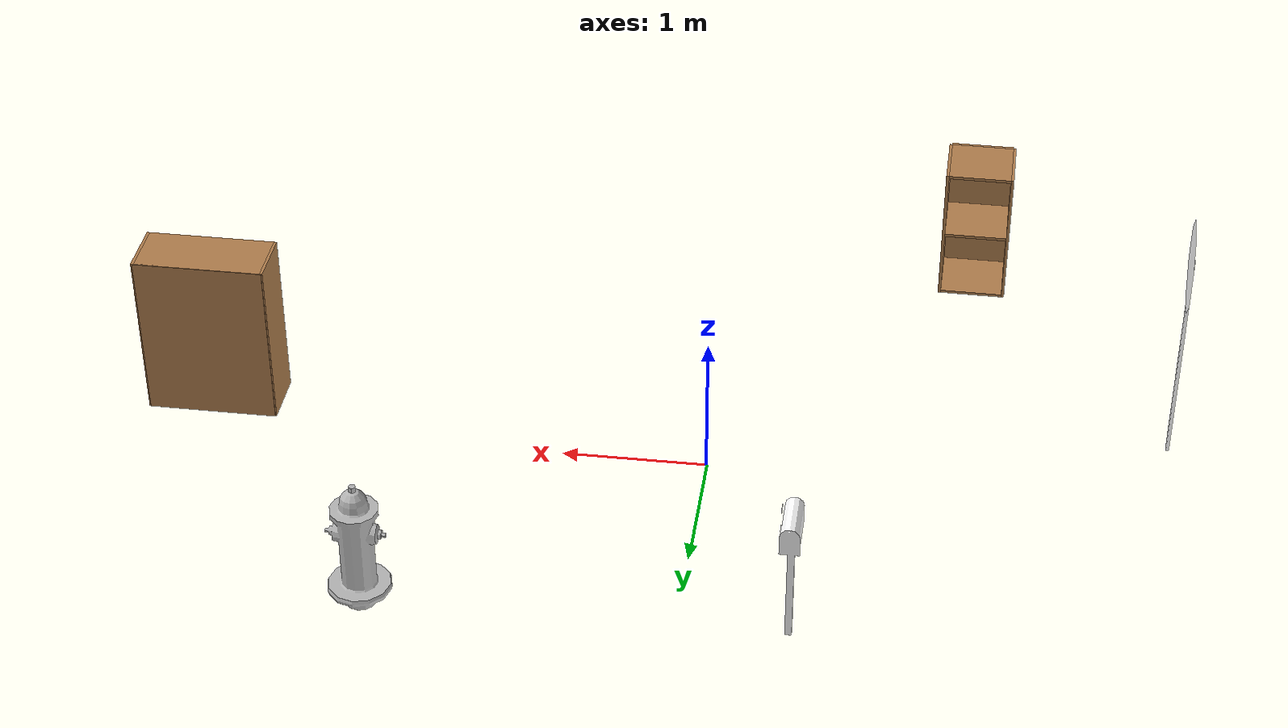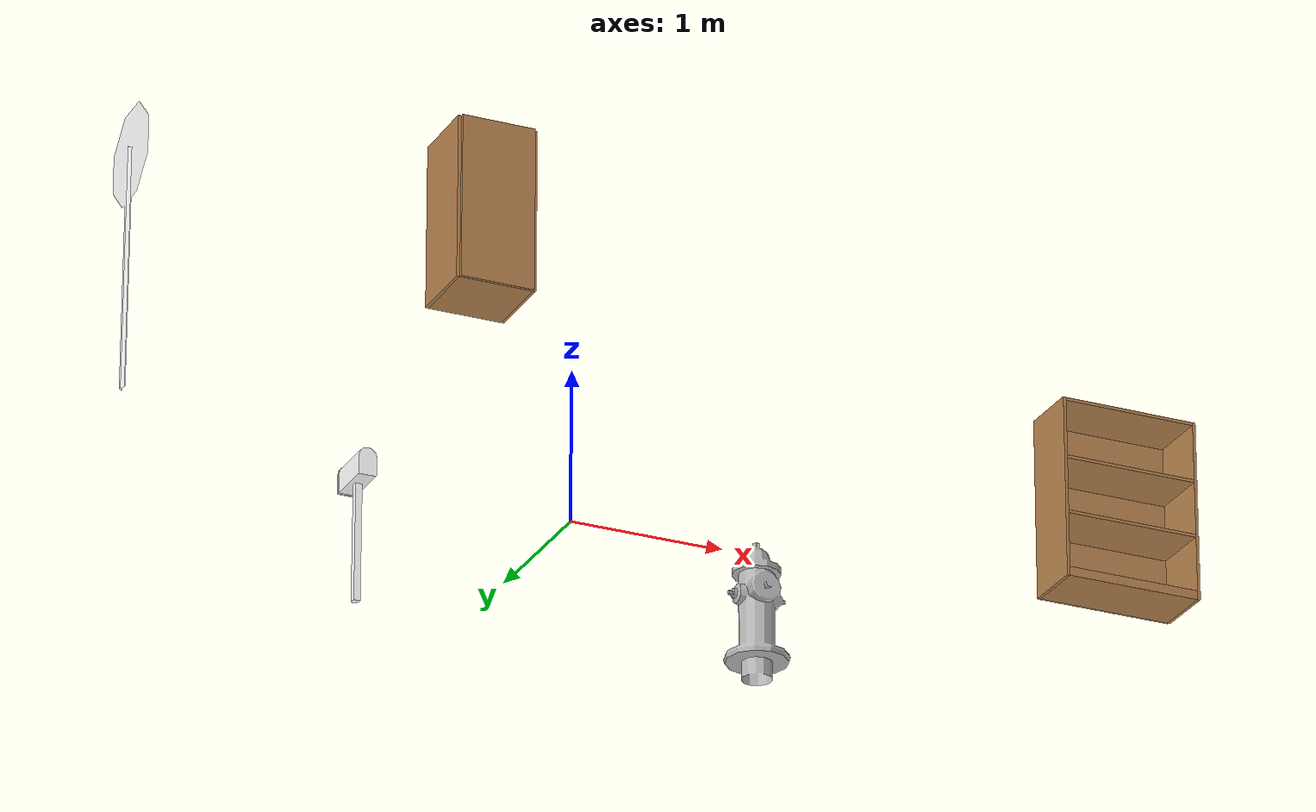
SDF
<?xml version='1.0'?>
<sdf version='1.6'>
  <model name='smallworld_populated'>
    <model name='Mailbox'>
      <link name='link'>
        <collision name='collision'>
          <geometry>
            <mesh>
              <uri>model://mailbox/meshes/mailbox.dae</uri>
            </mesh>
          </geometry>
        </collision>
        <visual name='visual'>
          <geometry>
            <mesh>
              <uri>model://mailbox/meshes/mailbox.dae</uri>
            </mesh>
          </geometry>
          <material>
            <script>
              <uri>model://mailbox/materials/scripts</uri>
              <uri>model://mailbox/materials/textures</uri>
              <name>Mailbox/Diffuse</name>
            </script>
          </material>
        </visual>
      </link>
      <pose frame=''>-0.71972 1.63359 0 0 -0 0</pose>
    </model>
    <model name='Stop Sign'>
      <static>1</static>
      <link name='link'>
        <collision name='collision'>
          <geometry>
            <mesh>
              <uri>model://stop_sign/meshes/stop_sign.dae</uri>
            </mesh>
          </geometry>
        </collision>
        <visual name='visual'>
          <geometry>
            <mesh>
              <uri>model://stop_sign/meshes/stop_sign.dae</uri>
            </mesh>
          </geometry>
          <material>
            <script>
              <uri>model://stop_sign/materials/scripts</uri>
              <uri>model://stop_sign/materials/textures</uri>
              <name>StopSign/Diffuse</name>
            </script>
          </material>
        </visual>
      </link>
      <pose frame=''>-3.13182 -0.613756 0 0 -0 1.55179</pose>
    </model>
    <model name='bookshelf'>
      <static>1</static>
      <link name='link'>
        <inertial>
          <mass>1</mass>
        </inertial>
        <collision name='back'>
          <pose frame=''>0 0.005 0.6 0 -0 0</pose>
          <geometry>
            <box>
              <size>0.9 0.01 1.2</size>
            </box>
          </geometry>
        </collision>
        <visual name='visual1'>
          <pose frame=''>0 0.005 0.6 0 -0 0</pose>
          <geometry>
            <box>
              <size>0.9 0.01 1.2</size>
            </box>
          </geometry>
          <material>
            <script>
              <uri>file://media/materials/scripts/gazebo.material</uri>
              <name>Gazebo/Wood</name>
            </script>
          </material>
        </visual>
        <collision name='left_side'>
          <pose frame=''>0.45 -0.195 0.6 0 -0 0</pose>
          <geometry>
            <box>
              <size>0.02 0.4 1.2</size>
            </box>
          </geometry>
        </collision>
        <visual name='visual2'>
          <pose frame=''>0.45 -0.195 0.6 0 -0 0</pose>
          <geometry>
            <box>
              <size>0.02 0.4 1.2</size>
            </box>
          </geometry>
          <material>
            <script>
              <uri>file://media/materials/scripts/gazebo.material</uri>
              <name>Gazebo/Wood</name>
            </script>
          </material>
        </visual>
        <collision name='right_side'>
          <pose frame=''>-0.45 -0.195 0.6 0 -0 0</pose>
          <geometry>
            <box>
              <size>0.02 0.4 1.2</size>
            </box>
          </geometry>
        </collision>
        <visual name='visual3'>
          <pose frame=''>-0.45 -0.195 0.6 0 -0 0</pose>
          <geometry>
            <box>
              <size>0.02 0.4 1.2</size>
            </box>
          </geometry>
          <material>
            <script>
              <uri>file://media/materials/scripts/gazebo.material</uri>
              <name>Gazebo/Wood</name>
            </script>
          </material>
        </visual>
        <collision name='bottom'>
          <pose frame=''>0 -0.195 0.03 0 -0 0</pose>
          <geometry>
            <box>
              <size>0.88 0.4 0.06</size>
            </box>
          </geometry>
        </collision>
        <visual name='visual4'>
          <pose frame=''>0 -0.195 0.03 0 -0 0</pose>
          <geometry>
            <box>
              <size>0.88 0.4 0.06</size>
            </box>
          </geometry>
          <material>
            <script>
              <uri>file://media/materials/scripts/gazebo.material</uri>
              <name>Gazebo/Wood</name>
            </script>
          </material>
        </visual>
        <collision name='top'>
          <pose frame=''>0 -0.195 1.19 0 -0 0</pose>
          <geometry>
            <box>
              <size>0.88 0.4 0.02</size>
            </box>
          </geometry>
        </collision>
        <visual name='visual5'>
          <pose frame=''>0 -0.195 1.19 0 -0 0</pose>
          <geometry>
            <box>
              <size>0.88 0.4 0.02</size>
            </box>
          </geometry>
          <material>
            <script>
              <uri>file://media/materials/scripts/gazebo.material</uri>
              <name>Gazebo/Wood</name>
            </script>
          </material>
        </visual>
        <collision name='low_shelf'>
          <pose frame=''>0 -0.195 0.43 0 -0 0</pose>
          <geometry>
            <box>
              <size>0.88 0.4 0.02</size>
            </box>
          </geometry>
        </collision>
        <visual name='visual6'>
          <pose frame=''>0 -0.195 0.43 0 -0 0</pose>
          <geometry>
            <box>
              <size>0.88 0.4 0.02</size>
            </box>
          </geometry>
          <material>
            <script>
              <uri>file://media/materials/scripts/gazebo.material</uri>
              <name>Gazebo/Wood</name>
            </script>
          </material>
        </visual>
        <collision name='high_shelf'>
          <pose frame=''>0 -0.195 0.8 0 -0 0</pose>
          <geometry>
            <box>
              <size>0.88 0.4 0.02</size>
            </box>
          </geometry>
        </collision>
        <visual name='visual7'>
          <pose frame=''>0 -0.195 0.8 0 -0 0</pose>
          <geometry>
            <box>
              <size>0.88 0.4 0.02</size>
            </box>
          </geometry>
          <material>
            <script>
              <uri>file://media/materials/scripts/gazebo.material</uri>
              <name>Gazebo/Wood</name>
            </script>
          </material>
        </visual>
      </link>
      <pose frame=''>3.52341 -0.157878 0 0 -0 0</pose>
    </model>
    <model name='cabinet'>
      <static>1</static>
      <link name='cabinet_bottom_plate'>
        <inertial>
          <pose frame=''>0 0 -1 0 -0 0</pose>
          <inertia>
            <ixx>2.05</ixx>
            <ixy>0</ixy>
            <ixz>0</ixz>
            <iyy>2.05</iyy>
            <iyz>0</iyz>
            <izz>2.05</izz>
          </inertia>
          <mass>25</mass>
        </inertial>
        <collision name='cabinet_bottom_plate_geom'>
          <pose frame=''>0 0 0.01 0 -0 0</pose>
          <geometry>
            <box>
              <size>0.45 0.45 0.02</size>
            </box>
          </geometry>
        </collision>
        <visual name='cabinet_bottom_plate_geom_visual'>
          <pose frame=''>0 0 0.01 0 -0 0</pose>
          <geometry>
            <box>
              <size>0.45 0.45 0.02</size>
            </box>
          </geometry>
          <material>
            <script>
              <uri>file://media/materials/scripts/gazebo.material</uri>
              <name>Gazebo/Wood</name>
            </script>
          </material>
        </visual>
        <collision name='cabinet_bottom_plate_geom_cabinet_back_plate'>
          <pose frame=''>0.235 0 0.51 0 -0 0</pose>
          <geometry>
            <box>
              <size>0.02 0.45 1.02</size>
            </box>
          </geometry>
        </collision>
        <visual name='cabinet_bottom_plate_geom_cabinet_back_plate_visual'>
          <pose frame=''>0.235 0 0.51 0 -0 0</pose>
          <geometry>
            <box>
              <size>0.02 0.45 1.02</size>
            </box>
          </geometry>
          <material>
            <script>
              <uri>file://media/materials/scripts/gazebo.material</uri>
              <name>Gazebo/Wood</name>
            </script>
          </material>
        </visual>
        <collision name='cabinet_bottom_plate_geom_cabinet_left_plate'>
          <pose frame=''>0 0.235 0.51 0 -0 0</pose>
          <geometry>
            <box>
              <size>0.45 0.02 1.02</size>
            </box>
          </geometry>
        </collision>
        <visual name='cabinet_bottom_plate_geom_cabinet_left_plate_visual'>
          <pose frame=''>0 0.235 0.51 0 -0 0</pose>
          <geometry>
            <box>
              <size>0.45 0.02 1.02</size>
            </box>
          </geometry>
          <material>
            <script>
              <uri>file://media/materials/scripts/gazebo.material</uri>
              <name>Gazebo/Wood</name>
            </script>
          </material>
        </visual>
        <collision name='cabinet_bottom_plate_geom_cabinet_middle_plate'>
          <pose frame=''>0 0 0.51 0 -0 0</pose>
          <geometry>
            <box>
              <size>0.45 0.45 0.02</size>
            </box>
          </geometry>
        </collision>
        <visual name='cabinet_bottom_plate_geom_cabinet_middle_plate_visual'>
          <pose frame=''>0 0 0.51 0 -0 0</pose>
          <geometry>
            <box>
              <size>0.45 0.45 0.02</size>
            </box>
          </geometry>
          <material>
            <script>
              <uri>file://media/materials/scripts/gazebo.material</uri>
              <name>Gazebo/Wood</name>
            </script>
          </material>
        </visual>
        <collision name='cabinet_bottom_plate_geom_cabinet_right_plate'>
          <pose frame=''>0 -0.235 0.51 0 -0 0</pose>
          <geometry>
            <box>
              <size>0.45 0.02 1.02</size>
            </box>
          </geometry>
        </collision>
        <visual name='cabinet_bottom_plate_geom_cabinet_right_plate_visual'>
          <pose frame=''>0 -0.235 0.51 0 -0 0</pose>
          <geometry>
            <box>
              <size>0.45 0.02 1.02</size>
            </box>
          </geometry>
          <material>
            <script>
              <uri>file://media/materials/scripts/gazebo.material</uri>
              <name>Gazebo/Wood</name>
            </script>
          </material>
        </visual>
        <collision name='cabinet_bottom_plate_geom_cabinet_top_plate'>
          <pose frame=''>0 0 1.01 0 -0 0</pose>
          <geometry>
            <box>
              <size>0.45 0.45 0.02</size>
            </box>
          </geometry>
        </collision>
        <visual name='cabinet_bottom_plate_geom_cabinet_top_plate_visual'>
          <pose frame=''>0 0 1.01 0 -0 0</pose>
          <geometry>
            <box>
              <size>0.45 0.45 0.02</size>
            </box>
          </geometry>
          <material>
            <script>
              <uri>file://media/materials/scripts/gazebo.material</uri>
              <name>Gazebo/Wood</name>
            </script>
          </material>
        </visual>
      </link>
      <pose frame=''>-1.7064 -2.55399 0 0 0 -1.57676</pose>
    </model>
    <model name='fire_hydrant'>
      <static>1</static>
      <link name='link'>
        <collision name='collision'>
          <geometry>
            <mesh>
              <uri>model://fire_hydrant/meshes/fire_hydrant.dae</uri>
            </mesh>
          </geometry>
        </collision>
        <visual name='visual'>
          <geometry>
            <mesh>
              <uri>model://fire_hydrant/meshes/fire_hydrant.dae</uri>
            </mesh>
          </geometry>
        </visual>
      </link>
      <pose frame=''>2.03453 1.69204 0 0 -0 0</pose>
    </model>
    <static>0</static>
    <allow_auto_disable>1</allow_auto_disable>
  </model>
</sdf>
